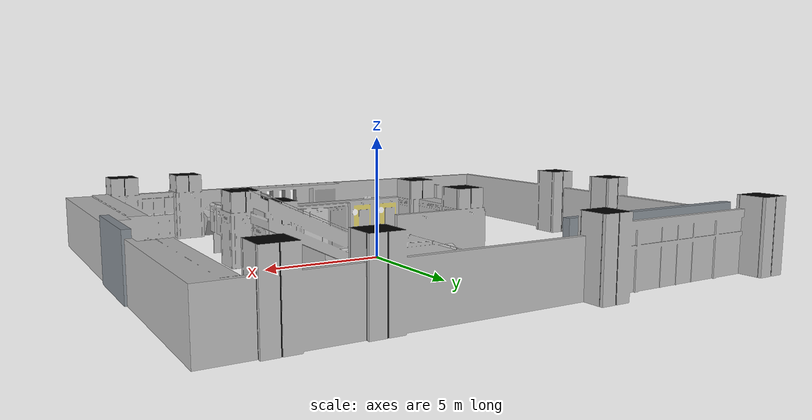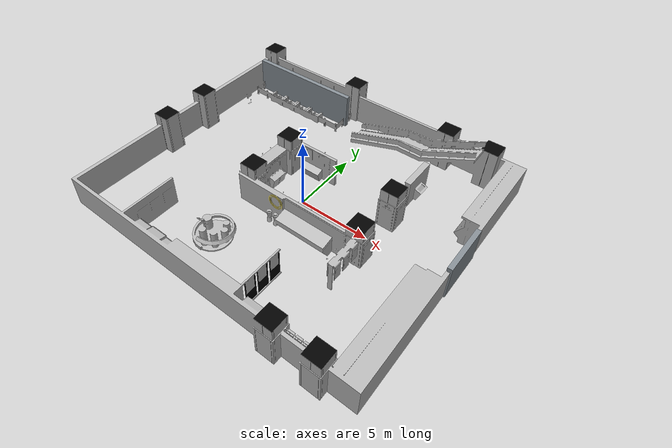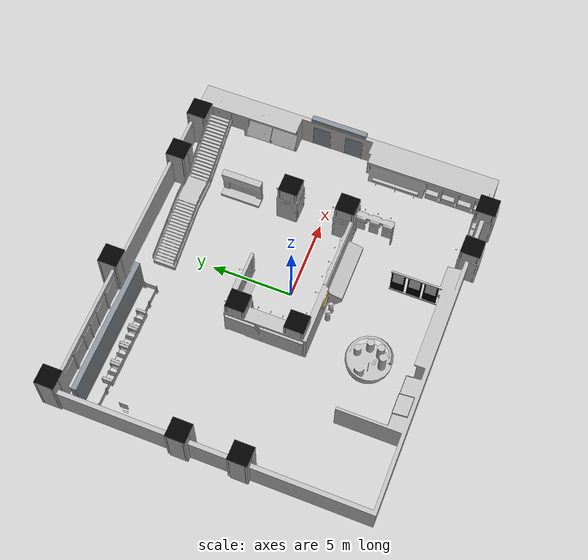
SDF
<?xml version="1.0" ?>
<sdf version="1.4">
  <model name="ISCAS_Museum">
    <link name="link">
      <collision name="collision">
        <pose>0 0 0 0 0 0</pose>
        <geometry>
          <mesh>
            <uri>model://ISCAS_Museum/meshes/ISCAS_museum.dae</uri>
          </mesh>
        </geometry>
      </collision>
      <visual name="visual">
        <pose>0 0 0 0 0 0</pose>
        <cast_shadows>false</cast_shadows>
        <geometry>
          <mesh>
            <uri>model://ISCAS_Museum/meshes/ISCAS_museum.dae</uri>
          </mesh>
        </geometry>
      </visual>
    </link>
    <!-- Seal the two doorway openings while keeping the replacement faces
         on the same planes as the surrounding museum walls. -->
    <link name="sealed_door_wall_south">
      <pose>10.69 0.99 1.25 0 0 0</pose>
      <collision name="collision">
        <geometry><box><size>0.32 3.55 2.5</size></box></geometry>
      </collision>
      <visual name="visual">
        <geometry><box><size>0.32 3.55 2.5</size></box></geometry>
        <material>
          <ambient>0.42 0.45 0.48 1</ambient>
          <diffuse>0.52 0.55 0.58 1</diffuse>
          <specular>0.08 0.08 0.08 1</specular>
        </material>
      </visual>
    </link>
    <link name="sealed_door_wall_east">
      <pose>-6.75 8.55 1.30 0 0 0</pose>
      <collision name="collision">
        <geometry><box><size>8.45 0.32 2.6</size></box></geometry>
      </collision>
      <visual name="visual">
        <geometry><box><size>8.45 0.32 2.6</size></box></geometry>
        <material>
          <ambient>0.42 0.45 0.48 1</ambient>
          <diffuse>0.52 0.55 0.58 1</diffuse>
          <specular>0.08 0.08 0.08 1</specular>
        </material>
      </visual>
    </link>
    <static>1</static>
  </model>
</sdf>
